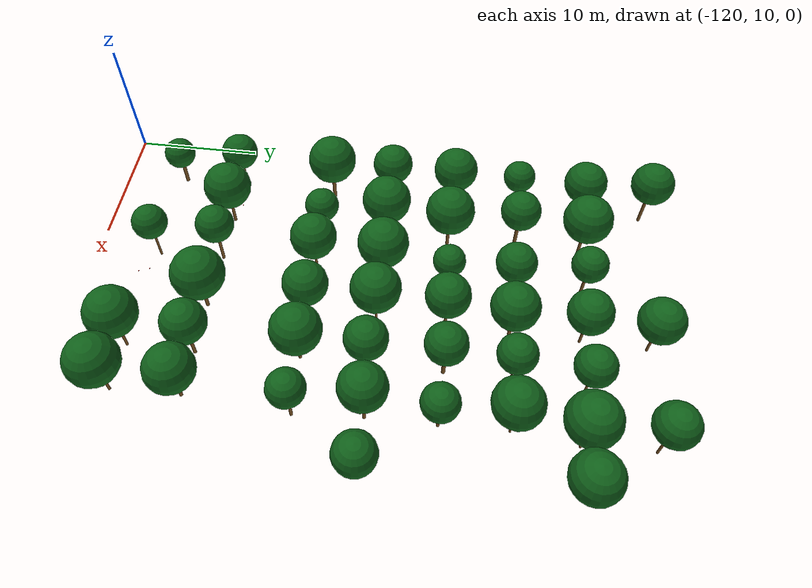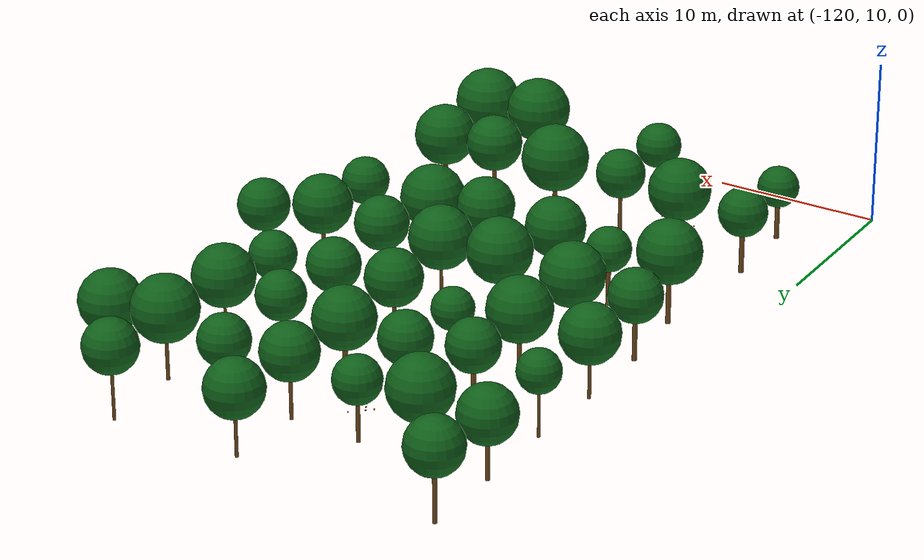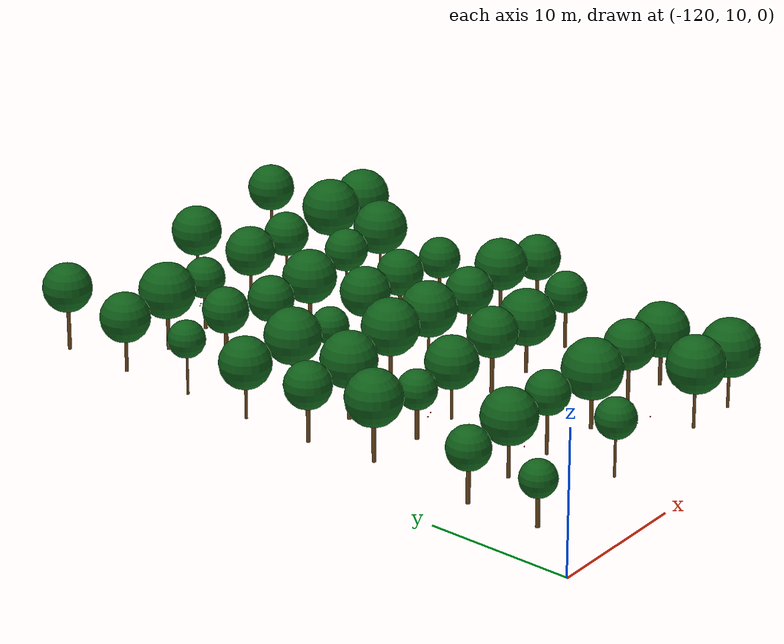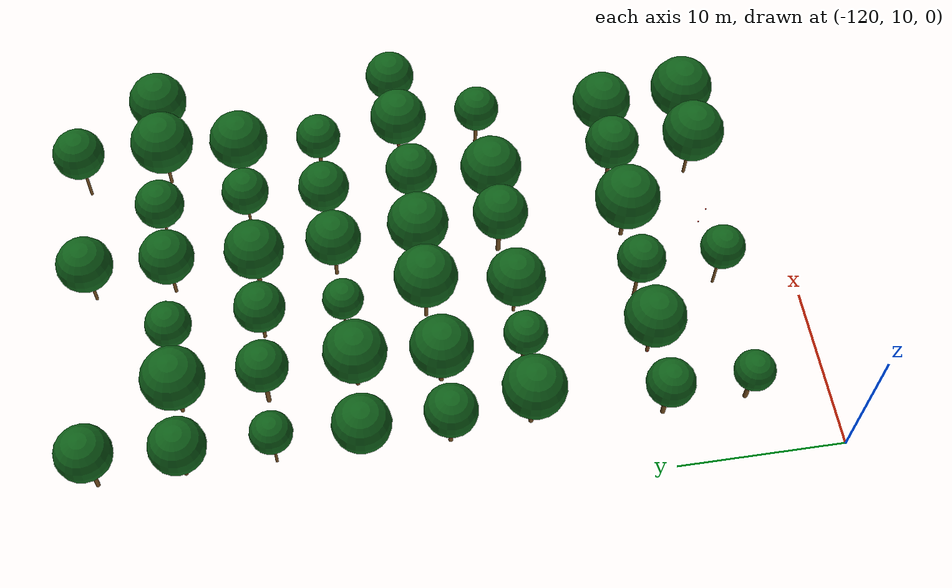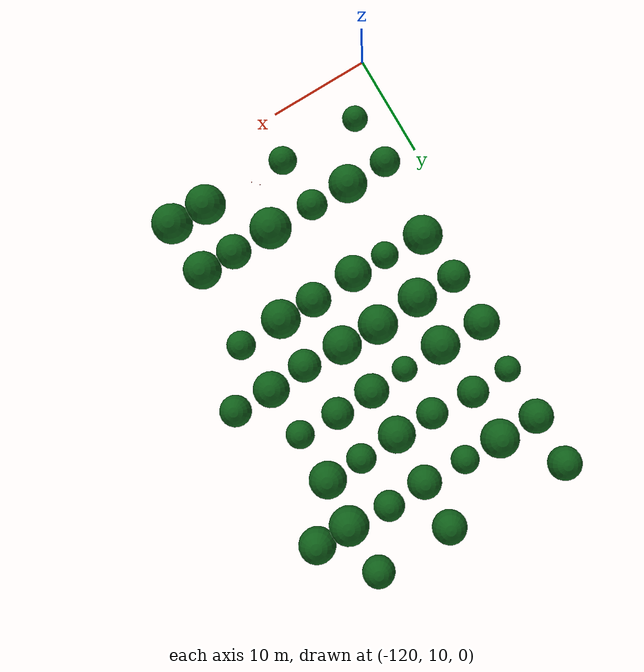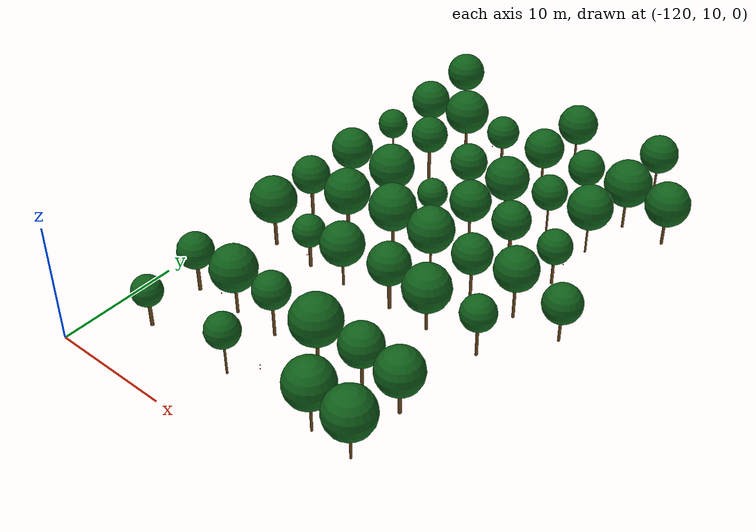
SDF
<sdf version="1.9">
 <world name="cheongsong_orchard">
  <model name="apple_tree_1367">
   <static>true</static>
   <pose>-116.18 15.01 0 0 0 0</pose>
   <link name="link">
    <collision name="trunk_col">
     <pose>0 0 1.04 0 0 0</pose>
     <geometry><cylinder><radius>0.144</radius><length>2.09</length></cylinder></geometry>
    </collision>
    <visual name="trunk_vis">
     <pose>0 0 1.04 0 0 0</pose>
     <geometry><cylinder><radius>0.144</radius><length>2.09</length></cylinder></geometry>
     <material><ambient>0.35 0.22 0.08 1</ambient><diffuse>0.45 0.30 0.12 1</diffuse></material>
    </visual>
    <collision name="canopy_col">
     <pose>0 0 3.31 0 0 0</pose>
     <geometry><sphere><radius>1.22</radius></sphere></geometry>
    </collision>
    <visual name="canopy_vis">
     <pose>0 0 3.31 0 0 0</pose>
     <geometry><sphere><radius>1.22</radius></sphere></geometry>
     <material><ambient>0.04 0.28 0.06 1</ambient><diffuse>0.06 0.38 0.10 1</diffuse></material>
    </visual>
   </link>
  </model>
  <model name="apple_tree_1369">
   <static>true</static>
   <pose>-108.26 15.04 0 0 0 0</pose>
   <link name="link">
    <collision name="trunk_col">
     <pose>0 0 1.38 0 0 0</pose>
     <geometry><cylinder><radius>0.088</radius><length>2.75</length></cylinder></geometry>
    </collision>
    <visual name="trunk_vis">
     <pose>0 0 1.38 0 0 0</pose>
     <geometry><cylinder><radius>0.088</radius><length>2.75</length></cylinder></geometry>
     <material><ambient>0.35 0.22 0.08 1</ambient><diffuse>0.45 0.30 0.12 1</diffuse></material>
    </visual>
    <collision name="canopy_col">
     <pose>0 0 4.09 0 0 0</pose>
     <geometry><sphere><radius>1.34</radius></sphere></geometry>
    </collision>
    <visual name="canopy_vis">
     <pose>0 0 4.09 0 0 0</pose>
     <geometry><sphere><radius>1.34</radius></sphere></geometry>
     <material><ambient>0.04 0.28 0.06 1</ambient><diffuse>0.06 0.38 0.10 1</diffuse></material>
    </visual>
   </link>
  </model>
  <model name="apple_tree_1371">
   <static>true</static>
   <pose>-99.95 14.92 0 0 0 0</pose>
   <link name="link">
    <collision name="trunk_col">
     <pose>0 0 1.28 0 0 0</pose>
     <geometry><cylinder><radius>0.100</radius><length>2.56</length></cylinder></geometry>
    </collision>
    <visual name="trunk_vis">
     <pose>0 0 1.28 0 0 0</pose>
     <geometry><cylinder><radius>0.100</radius><length>2.56</length></cylinder></geometry>
     <material><ambient>0.35 0.22 0.08 1</ambient><diffuse>0.45 0.30 0.12 1</diffuse></material>
    </visual>
    <collision name="canopy_col">
     <pose>0 0 4.46 0 0 0</pose>
     <geometry><sphere><radius>1.90</radius></sphere></geometry>
    </collision>
    <visual name="canopy_vis">
     <pose>0 0 4.46 0 0 0</pose>
     <geometry><sphere><radius>1.90</radius></sphere></geometry>
     <material><ambient>0.04 0.28 0.06 1</ambient><diffuse>0.06 0.38 0.10 1</diffuse></material>
    </visual>
   </link>
  </model>
  <model name="apple_tree_1372">
   <static>true</static>
   <pose>-96.33 14.81 0 0 0 0</pose>
   <link name="link">
    <collision name="trunk_col">
     <pose>0 0 1.15 0 0 0</pose>
     <geometry><cylinder><radius>0.099</radius><length>2.31</length></cylinder></geometry>
    </collision>
    <visual name="trunk_vis">
     <pose>0 0 1.15 0 0 0</pose>
     <geometry><cylinder><radius>0.099</radius><length>2.31</length></cylinder></geometry>
     <material><ambient>0.35 0.22 0.08 1</ambient><diffuse>0.45 0.30 0.12 1</diffuse></material>
    </visual>
    <collision name="canopy_col">
     <pose>0 0 4.24 0 0 0</pose>
     <geometry><sphere><radius>1.93</radius></sphere></geometry>
    </collision>
    <visual name="canopy_vis">
     <pose>0 0 4.24 0 0 0</pose>
     <geometry><sphere><radius>1.93</radius></sphere></geometry>
     <material><ambient>0.04 0.28 0.06 1</ambient><diffuse>0.06 0.38 0.10 1</diffuse></material>
    </visual>
   </link>
  </model>
  <model name="apple_tree_1419">
   <static>true</static>
   <pose>-116.46 20.05 0 0 0 0</pose>
   <link name="link">
    <collision name="trunk_col">
     <pose>0 0 1.18 0 0 0</pose>
     <geometry><cylinder><radius>0.147</radius><length>2.37</length></cylinder></geometry>
    </collision>
    <visual name="trunk_vis">
     <pose>0 0 1.18 0 0 0</pose>
     <geometry><cylinder><radius>0.147</radius><length>2.37</length></cylinder></geometry>
     <material><ambient>0.35 0.22 0.08 1</ambient><diffuse>0.45 0.30 0.12 1</diffuse></material>
    </visual>
    <collision name="canopy_col">
     <pose>0 0 3.81 0 0 0</pose>
     <geometry><sphere><radius>1.44</radius></sphere></geometry>
    </collision>
    <visual name="canopy_vis">
     <pose>0 0 3.81 0 0 0</pose>
     <geometry><sphere><radius>1.44</radius></sphere></geometry>
     <material><ambient>0.04 0.28 0.06 1</ambient><diffuse>0.06 0.38 0.10 1</diffuse></material>
    </visual>
   </link>
  </model>
  <model name="apple_tree_1420">
   <static>true</static>
   <pose>-112.37 20.08 0 0 0 0</pose>
   <link name="link">
    <collision name="trunk_col">
     <pose>0 0 1.21 0 0 0</pose>
     <geometry><cylinder><radius>0.117</radius><length>2.42</length></cylinder></geometry>
    </collision>
    <visual name="trunk_vis">
     <pose>0 0 1.21 0 0 0</pose>
     <geometry><cylinder><radius>0.117</radius><length>2.42</length></cylinder></geometry>
     <material><ambient>0.35 0.22 0.08 1</ambient><diffuse>0.45 0.30 0.12 1</diffuse></material>
    </visual>
    <collision name="canopy_col">
     <pose>0 0 4.25 0 0 0</pose>
     <geometry><sphere><radius>1.83</radius></sphere></geometry>
    </collision>
    <visual name="canopy_vis">
     <pose>0 0 4.25 0 0 0</pose>
     <geometry><sphere><radius>1.83</radius></sphere></geometry>
     <material><ambient>0.04 0.28 0.06 1</ambient><diffuse>0.06 0.38 0.10 1</diffuse></material>
    </visual>
   </link>
  </model>
  <model name="apple_tree_1421">
   <static>true</static>
   <pose>-108.48 20.05 0 0 0 0</pose>
   <link name="link">
    <collision name="trunk_col">
     <pose>0 0 1.43 0 0 0</pose>
     <geometry><cylinder><radius>0.115</radius><length>2.86</length></cylinder></geometry>
    </collision>
    <visual name="trunk_vis">
     <pose>0 0 1.43 0 0 0</pose>
     <geometry><cylinder><radius>0.115</radius><length>2.86</length></cylinder></geometry>
     <material><ambient>0.35 0.22 0.08 1</ambient><diffuse>0.45 0.30 0.12 1</diffuse></material>
    </visual>
    <collision name="canopy_col">
     <pose>0 0 4.31 0 0 0</pose>
     <geometry><sphere><radius>1.45</radius></sphere></geometry>
    </collision>
    <visual name="canopy_vis">
     <pose>0 0 4.31 0 0 0</pose>
     <geometry><sphere><radius>1.45</radius></sphere></geometry>
     <material><ambient>0.04 0.28 0.06 1</ambient><diffuse>0.06 0.38 0.10 1</diffuse></material>
    </visual>
   </link>
  </model>
  <model name="apple_tree_1422">
   <static>true</static>
   <pose>-104.01 19.91 0 0 0 0</pose>
   <link name="link">
    <collision name="trunk_col">
     <pose>0 0 1.10 0 0 0</pose>
     <geometry><cylinder><radius>0.131</radius><length>2.21</length></cylinder></geometry>
    </collision>
    <visual name="trunk_vis">
     <pose>0 0 1.10 0 0 0</pose>
     <geometry><cylinder><radius>0.131</radius><length>2.21</length></cylinder></geometry>
     <material><ambient>0.35 0.22 0.08 1</ambient><diffuse>0.45 0.30 0.12 1</diffuse></material>
    </visual>
    <collision name="canopy_col">
     <pose>0 0 4.20 0 0 0</pose>
     <geometry><sphere><radius>1.99</radius></sphere></geometry>
    </collision>
    <visual name="canopy_vis">
     <pose>0 0 4.20 0 0 0</pose>
     <geometry><sphere><radius>1.99</radius></sphere></geometry>
     <material><ambient>0.04 0.28 0.06 1</ambient><diffuse>0.06 0.38 0.10 1</diffuse></material>
    </visual>
   </link>
  </model>
  <model name="apple_tree_1423">
   <static>true</static>
   <pose>-99.92 20.02 0 0 0 0</pose>
   <link name="link">
    <collision name="trunk_col">
     <pose>0 0 1.28 0 0 0</pose>
     <geometry><cylinder><radius>0.125</radius><length>2.57</length></cylinder></geometry>
    </collision>
    <visual name="trunk_vis">
     <pose>0 0 1.28 0 0 0</pose>
     <geometry><cylinder><radius>0.125</radius><length>2.57</length></cylinder></geometry>
     <material><ambient>0.35 0.22 0.08 1</ambient><diffuse>0.45 0.30 0.12 1</diffuse></material>
    </visual>
    <collision name="canopy_col">
     <pose>0 0 4.23 0 0 0</pose>
     <geometry><sphere><radius>1.66</radius></sphere></geometry>
    </collision>
    <visual name="canopy_vis">
     <pose>0 0 4.23 0 0 0</pose>
     <geometry><sphere><radius>1.66</radius></sphere></geometry>
     <material><ambient>0.04 0.28 0.06 1</ambient><diffuse>0.06 0.38 0.10 1</diffuse></material>
    </visual>
   </link>
  </model>
  <model name="apple_tree_1424">
   <static>true</static>
   <pose>-96.47 19.96 0 0 0 0</pose>
   <link name="link">
    <collision name="trunk_col">
     <pose>0 0 1.07 0 0 0</pose>
     <geometry><cylinder><radius>0.129</radius><length>2.13</length></cylinder></geometry>
    </collision>
    <visual name="trunk_vis">
     <pose>0 0 1.07 0 0 0</pose>
     <geometry><cylinder><radius>0.129</radius><length>2.13</length></cylinder></geometry>
     <material><ambient>0.35 0.22 0.08 1</ambient><diffuse>0.45 0.30 0.12 1</diffuse></material>
    </visual>
    <collision name="canopy_col">
     <pose>0 0 3.95 0 0 0</pose>
     <geometry><sphere><radius>1.82</radius></sphere></geometry>
    </collision>
    <visual name="canopy_vis">
     <pose>0 0 3.95 0 0 0</pose>
     <geometry><sphere><radius>1.82</radius></sphere></geometry>
     <material><ambient>0.04 0.28 0.06 1</ambient><diffuse>0.06 0.38 0.10 1</diffuse></material>
    </visual>
   </link>
  </model>
  <model name="apple_tree_1469">
   <static>true</static>
   <pose>-115.90 27.81 0 0 0 0</pose>
   <link name="link">
    <collision name="trunk_col">
     <pose>0 0 1.29 0 0 0</pose>
     <geometry><cylinder><radius>0.144</radius><length>2.58</length></cylinder></geometry>
    </collision>
    <visual name="trunk_vis">
     <pose>0 0 1.29 0 0 0</pose>
     <geometry><cylinder><radius>0.144</radius><length>2.58</length></cylinder></geometry>
     <material><ambient>0.35 0.22 0.08 1</ambient><diffuse>0.45 0.30 0.12 1</diffuse></material>
    </visual>
    <collision name="canopy_col">
     <pose>0 0 4.45 0 0 0</pose>
     <geometry><sphere><radius>1.87</radius></sphere></geometry>
    </collision>
    <visual name="canopy_vis">
     <pose>0 0 4.45 0 0 0</pose>
     <geometry><sphere><radius>1.87</radius></sphere></geometry>
     <material><ambient>0.04 0.28 0.06 1</ambient><diffuse>0.06 0.38 0.10 1</diffuse></material>
    </visual>
   </link>
  </model>
  <model name="apple_tree_1470">
   <static>true</static>
   <pose>-111.93 27.57 0 0 0 0</pose>
   <link name="link">
    <collision name="trunk_col">
     <pose>0 0 1.08 0 0 0</pose>
     <geometry><cylinder><radius>0.138</radius><length>2.17</length></cylinder></geometry>
    </collision>
    <visual name="trunk_vis">
     <pose>0 0 1.08 0 0 0</pose>
     <geometry><cylinder><radius>0.138</radius><length>2.17</length></cylinder></geometry>
     <material><ambient>0.35 0.22 0.08 1</ambient><diffuse>0.45 0.30 0.12 1</diffuse></material>
    </visual>
    <collision name="canopy_col">
     <pose>0 0 3.48 0 0 0</pose>
     <geometry><sphere><radius>1.31</radius></sphere></geometry>
    </collision>
    <visual name="canopy_vis">
     <pose>0 0 3.48 0 0 0</pose>
     <geometry><sphere><radius>1.31</radius></sphere></geometry>
     <material><ambient>0.04 0.28 0.06 1</ambient><diffuse>0.06 0.38 0.10 1</diffuse></material>
    </visual>
   </link>
  </model>
  <model name="apple_tree_1471">
   <static>true</static>
   <pose>-108.46 27.54 0 0 0 0</pose>
   <link name="link">
    <collision name="trunk_col">
     <pose>0 0 1.12 0 0 0</pose>
     <geometry><cylinder><radius>0.098</radius><length>2.25</length></cylinder></geometry>
    </collision>
    <visual name="trunk_vis">
     <pose>0 0 1.12 0 0 0</pose>
     <geometry><cylinder><radius>0.098</radius><length>2.25</length></cylinder></geometry>
     <material><ambient>0.35 0.22 0.08 1</ambient><diffuse>0.45 0.30 0.12 1</diffuse></material>
    </visual>
    <collision name="canopy_col">
     <pose>0 0 4.00 0 0 0</pose>
     <geometry><sphere><radius>1.75</radius></sphere></geometry>
    </collision>
    <visual name="canopy_vis">
     <pose>0 0 4.00 0 0 0</pose>
     <geometry><sphere><radius>1.75</radius></sphere></geometry>
     <material><ambient>0.04 0.28 0.06 1</ambient><diffuse>0.06 0.38 0.10 1</diffuse></material>
    </visual>
   </link>
  </model>
  <model name="apple_tree_1472">
   <static>true</static>
   <pose>-104.01 27.74 0 0 0 0</pose>
   <link name="link">
    <collision name="trunk_col">
     <pose>0 0 1.32 0 0 0</pose>
     <geometry><cylinder><radius>0.145</radius><length>2.63</length></cylinder></geometry>
    </collision>
    <visual name="trunk_vis">
     <pose>0 0 1.32 0 0 0</pose>
     <geometry><cylinder><radius>0.145</radius><length>2.63</length></cylinder></geometry>
     <material><ambient>0.35 0.22 0.08 1</ambient><diffuse>0.45 0.30 0.12 1</diffuse></material>
    </visual>
    <collision name="canopy_col">
     <pose>0 0 4.30 0 0 0</pose>
     <geometry><sphere><radius>1.67</radius></sphere></geometry>
    </collision>
    <visual name="canopy_vis">
     <pose>0 0 4.30 0 0 0</pose>
     <geometry><sphere><radius>1.67</radius></sphere></geometry>
     <material><ambient>0.04 0.28 0.06 1</ambient><diffuse>0.06 0.38 0.10 1</diffuse></material>
    </visual>
   </link>
  </model>
  <model name="apple_tree_1473">
   <static>true</static>
   <pose>-100.42 27.70 0 0 0 0</pose>
   <link name="link">
    <collision name="trunk_col">
     <pose>0 0 1.05 0 0 0</pose>
     <geometry><cylinder><radius>0.121</radius><length>2.09</length></cylinder></geometry>
    </collision>
    <visual name="trunk_vis">
     <pose>0 0 1.05 0 0 0</pose>
     <geometry><cylinder><radius>0.121</radius><length>2.09</length></cylinder></geometry>
     <material><ambient>0.35 0.22 0.08 1</ambient><diffuse>0.45 0.30 0.12 1</diffuse></material>
    </visual>
    <collision name="canopy_col">
     <pose>0 0 3.97 0 0 0</pose>
     <geometry><sphere><radius>1.88</radius></sphere></geometry>
    </collision>
    <visual name="canopy_vis">
     <pose>0 0 3.97 0 0 0</pose>
     <geometry><sphere><radius>1.88</radius></sphere></geometry>
     <material><ambient>0.04 0.28 0.06 1</ambient><diffuse>0.06 0.38 0.10 1</diffuse></material>
    </visual>
   </link>
  </model>
  <model name="apple_tree_1474">
   <static>true</static>
   <pose>-95.95 27.89 0 0 0 0</pose>
   <link name="link">
    <collision name="trunk_col">
     <pose>0 0 1.30 0 0 0</pose>
     <geometry><cylinder><radius>0.117</radius><length>2.60</length></cylinder></geometry>
    </collision>
    <visual name="trunk_vis">
     <pose>0 0 1.30 0 0 0</pose>
     <geometry><cylinder><radius>0.117</radius><length>2.60</length></cylinder></geometry>
     <material><ambient>0.35 0.22 0.08 1</ambient><diffuse>0.45 0.30 0.12 1</diffuse></material>
    </visual>
    <collision name="canopy_col">
     <pose>0 0 3.99 0 0 0</pose>
     <geometry><sphere><radius>1.39</radius></sphere></geometry>
    </collision>
    <visual name="canopy_vis">
     <pose>0 0 3.99 0 0 0</pose>
     <geometry><sphere><radius>1.39</radius></sphere></geometry>
     <material><ambient>0.04 0.28 0.06 1</ambient><diffuse>0.06 0.38 0.10 1</diffuse></material>
    </visual>
   </link>
  </model>
  <model name="apple_tree_1521">
   <static>true</static>
   <pose>-116.43 32.63 0 0 0 0</pose>
   <link name="link">
    <collision name="trunk_col">
     <pose>0 0 1.21 0 0 0</pose>
     <geometry><cylinder><radius>0.138</radius><length>2.41</length></cylinder></geometry>
    </collision>
    <visual name="trunk_vis">
     <pose>0 0 1.21 0 0 0</pose>
     <geometry><cylinder><radius>0.138</radius><length>2.41</length></cylinder></geometry>
     <material><ambient>0.35 0.22 0.08 1</ambient><diffuse>0.45 0.30 0.12 1</diffuse></material>
    </visual>
    <collision name="canopy_col">
     <pose>0 0 3.97 0 0 0</pose>
     <geometry><sphere><radius>1.56</radius></sphere></geometry>
    </collision>
    <visual name="canopy_vis">
     <pose>0 0 3.97 0 0 0</pose>
     <geometry><sphere><radius>1.56</radius></sphere></geometry>
     <material><ambient>0.04 0.28 0.06 1</ambient><diffuse>0.06 0.38 0.10 1</diffuse></material>
    </visual>
   </link>
  </model>
  <model name="apple_tree_1522">
   <static>true</static>
   <pose>-112.46 32.58 0 0 0 0</pose>
   <link name="link">
    <collision name="trunk_col">
     <pose>0 0 1.17 0 0 0</pose>
     <geometry><cylinder><radius>0.149</radius><length>2.34</length></cylinder></geometry>
    </collision>
    <visual name="trunk_vis">
     <pose>0 0 1.17 0 0 0</pose>
     <geometry><cylinder><radius>0.149</radius><length>2.34</length></cylinder></geometry>
     <material><ambient>0.35 0.22 0.08 1</ambient><diffuse>0.45 0.30 0.12 1</diffuse></material>
    </visual>
    <collision name="canopy_col">
     <pose>0 0 4.20 0 0 0</pose>
     <geometry><sphere><radius>1.86</radius></sphere></geometry>
    </collision>
    <visual name="canopy_vis">
     <pose>0 0 4.20 0 0 0</pose>
     <geometry><sphere><radius>1.86</radius></sphere></geometry>
     <material><ambient>0.04 0.28 0.06 1</ambient><diffuse>0.06 0.38 0.10 1</diffuse></material>
    </visual>
   </link>
  </model>
  <model name="apple_tree_1523">
   <static>true</static>
   <pose>-107.98 32.84 0 0 0 0</pose>
   <link name="link">
    <collision name="trunk_col">
     <pose>0 0 1.38 0 0 0</pose>
     <geometry><cylinder><radius>0.128</radius><length>2.75</length></cylinder></geometry>
    </collision>
    <visual name="trunk_vis">
     <pose>0 0 1.38 0 0 0</pose>
     <geometry><cylinder><radius>0.128</radius><length>2.75</length></cylinder></geometry>
     <material><ambient>0.35 0.22 0.08 1</ambient><diffuse>0.45 0.30 0.12 1</diffuse></material>
    </visual>
    <collision name="canopy_col">
     <pose>0 0 4.64 0 0 0</pose>
     <geometry><sphere><radius>1.89</radius></sphere></geometry>
    </collision>
    <visual name="canopy_vis">
     <pose>0 0 4.64 0 0 0</pose>
     <geometry><sphere><radius>1.89</radius></sphere></geometry>
     <material><ambient>0.04 0.28 0.06 1</ambient><diffuse>0.06 0.38 0.10 1</diffuse></material>
    </visual>
   </link>
  </model>
  <model name="apple_tree_1524">
   <static>true</static>
   <pose>-104.12 32.77 0 0 0 0</pose>
   <link name="link">
    <collision name="trunk_col">
     <pose>0 0 1.29 0 0 0</pose>
     <geometry><cylinder><radius>0.093</radius><length>2.57</length></cylinder></geometry>
    </collision>
    <visual name="trunk_vis">
     <pose>0 0 1.29 0 0 0</pose>
     <geometry><cylinder><radius>0.093</radius><length>2.57</length></cylinder></geometry>
     <material><ambient>0.35 0.22 0.08 1</ambient><diffuse>0.45 0.30 0.12 1</diffuse></material>
    </visual>
    <collision name="canopy_col">
     <pose>0 0 4.43 0 0 0</pose>
     <geometry><sphere><radius>1.85</radius></sphere></geometry>
    </collision>
    <visual name="canopy_vis">
     <pose>0 0 4.43 0 0 0</pose>
     <geometry><sphere><radius>1.85</radius></sphere></geometry>
     <material><ambient>0.04 0.28 0.06 1</ambient><diffuse>0.06 0.38 0.10 1</diffuse></material>
    </visual>
   </link>
  </model>
  <model name="apple_tree_1525">
   <static>true</static>
   <pose>-100.10 32.61 0 0 0 0</pose>
   <link name="link">
    <collision name="trunk_col">
     <pose>0 0 1.34 0 0 0</pose>
     <geometry><cylinder><radius>0.118</radius><length>2.67</length></cylinder></geometry>
    </collision>
    <visual name="trunk_vis">
     <pose>0 0 1.34 0 0 0</pose>
     <geometry><cylinder><radius>0.118</radius><length>2.67</length></cylinder></geometry>
     <material><ambient>0.35 0.22 0.08 1</ambient><diffuse>0.45 0.30 0.12 1</diffuse></material>
    </visual>
    <collision name="canopy_col">
     <pose>0 0 4.25 0 0 0</pose>
     <geometry><sphere><radius>1.58</radius></sphere></geometry>
    </collision>
    <visual name="canopy_vis">
     <pose>0 0 4.25 0 0 0</pose>
     <geometry><sphere><radius>1.58</radius></sphere></geometry>
     <material><ambient>0.04 0.28 0.06 1</ambient><diffuse>0.06 0.38 0.10 1</diffuse></material>
    </visual>
   </link>
  </model>
  <model name="apple_tree_1526">
   <static>true</static>
   <pose>-96.32 32.91 0 0 0 0</pose>
   <link name="link">
    <collision name="trunk_col">
     <pose>0 0 1.44 0 0 0</pose>
     <geometry><cylinder><radius>0.115</radius><length>2.89</length></cylinder></geometry>
    </collision>
    <visual name="trunk_vis">
     <pose>0 0 1.44 0 0 0</pose>
     <geometry><cylinder><radius>0.115</radius><length>2.89</length></cylinder></geometry>
     <material><ambient>0.35 0.22 0.08 1</ambient><diffuse>0.45 0.30 0.12 1</diffuse></material>
    </visual>
    <collision name="canopy_col">
     <pose>0 0 4.62 0 0 0</pose>
     <geometry><sphere><radius>1.73</radius></sphere></geometry>
    </collision>
    <visual name="canopy_vis">
     <pose>0 0 4.62 0 0 0</pose>
     <geometry><sphere><radius>1.73</radius></sphere></geometry>
     <material><ambient>0.04 0.28 0.06 1</ambient><diffuse>0.06 0.38 0.10 1</diffuse></material>
    </visual>
   </link>
  </model>
  <model name="apple_tree_1527">
   <static>true</static>
   <pose>-92.25 32.93 0 0 0 0</pose>
   <link name="link">
    <collision name="trunk_col">
     <pose>0 0 1.03 0 0 0</pose>
     <geometry><cylinder><radius>0.109</radius><length>2.05</length></cylinder></geometry>
    </collision>
    <visual name="trunk_vis">
     <pose>0 0 1.03 0 0 0</pose>
     <geometry><cylinder><radius>0.109</radius><length>2.05</length></cylinder></geometry>
     <material><ambient>0.35 0.22 0.08 1</ambient><diffuse>0.45 0.30 0.12 1</diffuse></material>
    </visual>
    <collision name="canopy_col">
     <pose>0 0 3.59 0 0 0</pose>
     <geometry><sphere><radius>1.54</radius></sphere></geometry>
    </collision>
    <visual name="canopy_vis">
     <pose>0 0 3.59 0 0 0</pose>
     <geometry><sphere><radius>1.54</radius></sphere></geometry>
     <material><ambient>0.04 0.28 0.06 1</ambient><diffuse>0.06 0.38 0.10 1</diffuse></material>
    </visual>
   </link>
  </model>
  <model name="apple_tree_1575">
   <static>true</static>
   <pose>-116.47 37.68 0 0 0 0</pose>
   <link name="link">
    <collision name="trunk_col">
     <pose>0 0 1.11 0 0 0</pose>
     <geometry><cylinder><radius>0.098</radius><length>2.21</length></cylinder></geometry>
    </collision>
    <visual name="trunk_vis">
     <pose>0 0 1.11 0 0 0</pose>
     <geometry><cylinder><radius>0.098</radius><length>2.21</length></cylinder></geometry>
     <material><ambient>0.35 0.22 0.08 1</ambient><diffuse>0.45 0.30 0.12 1</diffuse></material>
    </visual>
    <collision name="canopy_col">
     <pose>0 0 3.93 0 0 0</pose>
     <geometry><sphere><radius>1.72</radius></sphere></geometry>
    </collision>
    <visual name="canopy_vis">
     <pose>0 0 3.93 0 0 0</pose>
     <geometry><sphere><radius>1.72</radius></sphere></geometry>
     <material><ambient>0.04 0.28 0.06 1</ambient><diffuse>0.06 0.38 0.10 1</diffuse></material>
    </visual>
   </link>
  </model>
  <model name="apple_tree_1576">
   <static>true</static>
   <pose>-112.03 37.52 0 0 0 0</pose>
   <link name="link">
    <collision name="trunk_col">
     <pose>0 0 1.12 0 0 0</pose>
     <geometry><cylinder><radius>0.126</radius><length>2.25</length></cylinder></geometry>
    </collision>
    <visual name="trunk_vis">
     <pose>0 0 1.12 0 0 0</pose>
     <geometry><cylinder><radius>0.126</radius><length>2.25</length></cylinder></geometry>
     <material><ambient>0.35 0.22 0.08 1</ambient><diffuse>0.45 0.30 0.12 1</diffuse></material>
    </visual>
    <collision name="canopy_col">
     <pose>0 0 4.12 0 0 0</pose>
     <geometry><sphere><radius>1.87</radius></sphere></geometry>
    </collision>
    <visual name="canopy_vis">
     <pose>0 0 4.12 0 0 0</pose>
     <geometry><sphere><radius>1.87</radius></sphere></geometry>
     <material><ambient>0.04 0.28 0.06 1</ambient><diffuse>0.06 0.38 0.10 1</diffuse></material>
    </visual>
   </link>
  </model>
  <model name="apple_tree_1577">
   <static>true</static>
   <pose>-107.98 37.78 0 0 0 0</pose>
   <link name="link">
    <collision name="trunk_col">
     <pose>0 0 0.98 0 0 0</pose>
     <geometry><cylinder><radius>0.081</radius><length>1.97</length></cylinder></geometry>
    </collision>
    <visual name="trunk_vis">
     <pose>0 0 0.98 0 0 0</pose>
     <geometry><cylinder><radius>0.081</radius><length>1.97</length></cylinder></geometry>
     <material><ambient>0.35 0.22 0.08 1</ambient><diffuse>0.45 0.30 0.12 1</diffuse></material>
    </visual>
    <collision name="canopy_col">
     <pose>0 0 3.20 0 0 0</pose>
     <geometry><sphere><radius>1.23</radius></sphere></geometry>
    </collision>
    <visual name="canopy_vis">
     <pose>0 0 3.20 0 0 0</pose>
     <geometry><sphere><radius>1.23</radius></sphere></geometry>
     <material><ambient>0.04 0.28 0.06 1</ambient><diffuse>0.06 0.38 0.10 1</diffuse></material>
    </visual>
   </link>
  </model>
  <model name="apple_tree_1578">
   <static>true</static>
   <pose>-104.27 37.89 0 0 0 0</pose>
   <link name="link">
    <collision name="trunk_col">
     <pose>0 0 1.25 0 0 0</pose>
     <geometry><cylinder><radius>0.109</radius><length>2.49</length></cylinder></geometry>
    </collision>
    <visual name="trunk_vis">
     <pose>0 0 1.25 0 0 0</pose>
     <geometry><cylinder><radius>0.109</radius><length>2.49</length></cylinder></geometry>
     <material><ambient>0.35 0.22 0.08 1</ambient><diffuse>0.45 0.30 0.12 1</diffuse></material>
    </visual>
    <collision name="canopy_col">
     <pose>0 0 4.16 0 0 0</pose>
     <geometry><sphere><radius>1.66</radius></sphere></geometry>
    </collision>
    <visual name="canopy_vis">
     <pose>0 0 4.16 0 0 0</pose>
     <geometry><sphere><radius>1.66</radius></sphere></geometry>
     <material><ambient>0.04 0.28 0.06 1</ambient><diffuse>0.06 0.38 0.10 1</diffuse></material>
    </visual>
   </link>
  </model>
  <model name="apple_tree_1579">
   <static>true</static>
   <pose>-100.44 38.05 0 0 0 0</pose>
   <link name="link">
    <collision name="trunk_col">
     <pose>0 0 1.24 0 0 0</pose>
     <geometry><cylinder><radius>0.147</radius><length>2.49</length></cylinder></geometry>
    </collision>
    <visual name="trunk_vis">
     <pose>0 0 1.24 0 0 0</pose>
     <geometry><cylinder><radius>0.147</radius><length>2.49</length></cylinder></geometry>
     <material><ambient>0.35 0.22 0.08 1</ambient><diffuse>0.45 0.30 0.12 1</diffuse></material>
    </visual>
    <collision name="canopy_col">
     <pose>0 0 4.04 0 0 0</pose>
     <geometry><sphere><radius>1.55</radius></sphere></geometry>
    </collision>
    <visual name="canopy_vis">
     <pose>0 0 4.04 0 0 0</pose>
     <geometry><sphere><radius>1.55</radius></sphere></geometry>
     <material><ambient>0.04 0.28 0.06 1</ambient><diffuse>0.06 0.38 0.10 1</diffuse></material>
    </visual>
   </link>
  </model>
  <model name="apple_tree_1580">
   <static>true</static>
   <pose>-96.33 37.98 0 0 0 0</pose>
   <link name="link">
    <collision name="trunk_col">
     <pose>0 0 1.10 0 0 0</pose>
     <geometry><cylinder><radius>0.115</radius><length>2.20</length></cylinder></geometry>
    </collision>
    <visual name="trunk_vis">
     <pose>0 0 1.10 0 0 0</pose>
     <geometry><cylinder><radius>0.115</radius><length>2.20</length></cylinder></geometry>
     <material><ambient>0.35 0.22 0.08 1</ambient><diffuse>0.45 0.30 0.12 1</diffuse></material>
    </visual>
    <collision name="canopy_col">
     <pose>0 0 3.58 0 0 0</pose>
     <geometry><sphere><radius>1.38</radius></sphere></geometry>
    </collision>
    <visual name="canopy_vis">
     <pose>0 0 3.58 0 0 0</pose>
     <geometry><sphere><radius>1.38</radius></sphere></geometry>
     <material><ambient>0.04 0.28 0.06 1</ambient><diffuse>0.06 0.38 0.10 1</diffuse></material>
    </visual>
   </link>
  </model>
  <model name="apple_tree_1632">
   <static>true</static>
   <pose>-116.29 42.72 0 0 0 0</pose>
   <link name="link">
    <collision name="trunk_col">
     <pose>0 0 1.35 0 0 0</pose>
     <geometry><cylinder><radius>0.084</radius><length>2.70</length></cylinder></geometry>
    </collision>
    <visual name="trunk_vis">
     <pose>0 0 1.35 0 0 0</pose>
     <geometry><cylinder><radius>0.084</radius><length>2.70</length></cylinder></geometry>
     <material><ambient>0.35 0.22 0.08 1</ambient><diffuse>0.45 0.30 0.12 1</diffuse></material>
    </visual>
    <collision name="canopy_col">
     <pose>0 0 3.94 0 0 0</pose>
     <geometry><sphere><radius>1.24</radius></sphere></geometry>
    </collision>
    <visual name="canopy_vis">
     <pose>0 0 3.94 0 0 0</pose>
     <geometry><sphere><radius>1.24</radius></sphere></geometry>
     <material><ambient>0.04 0.28 0.06 1</ambient><diffuse>0.06 0.38 0.10 1</diffuse></material>
    </visual>
   </link>
  </model>
  <model name="apple_tree_1633">
   <static>true</static>
   <pose>-112.36 42.83 0 0 0 0</pose>
   <link name="link">
    <collision name="trunk_col">
     <pose>0 0 1.46 0 0 0</pose>
     <geometry><cylinder><radius>0.139</radius><length>2.91</length></cylinder></geometry>
    </collision>
    <visual name="trunk_vis">
     <pose>0 0 1.46 0 0 0</pose>
     <geometry><cylinder><radius>0.139</radius><length>2.91</length></cylinder></geometry>
     <material><ambient>0.35 0.22 0.08 1</ambient><diffuse>0.45 0.30 0.12 1</diffuse></material>
    </visual>
    <collision name="canopy_col">
     <pose>0 0 4.43 0 0 0</pose>
     <geometry><sphere><radius>1.52</radius></sphere></geometry>
    </collision>
    <visual name="canopy_vis">
     <pose>0 0 4.43 0 0 0</pose>
     <geometry><sphere><radius>1.52</radius></sphere></geometry>
     <material><ambient>0.04 0.28 0.06 1</ambient><diffuse>0.06 0.38 0.10 1</diffuse></material>
    </visual>
   </link>
  </model>
  <model name="apple_tree_1634">
   <static>true</static>
   <pose>-108.06 42.68 0 0 0 0</pose>
   <link name="link">
    <collision name="trunk_col">
     <pose>0 0 1.05 0 0 0</pose>
     <geometry><cylinder><radius>0.106</radius><length>2.11</length></cylinder></geometry>
    </collision>
    <visual name="trunk_vis">
     <pose>0 0 1.05 0 0 0</pose>
     <geometry><cylinder><radius>0.106</radius><length>2.11</length></cylinder></geometry>
     <material><ambient>0.35 0.22 0.08 1</ambient><diffuse>0.45 0.30 0.12 1</diffuse></material>
    </visual>
    <collision name="canopy_col">
     <pose>0 0 3.64 0 0 0</pose>
     <geometry><sphere><radius>1.53</radius></sphere></geometry>
    </collision>
    <visual name="canopy_vis">
     <pose>0 0 3.64 0 0 0</pose>
     <geometry><sphere><radius>1.53</radius></sphere></geometry>
     <material><ambient>0.04 0.28 0.06 1</ambient><diffuse>0.06 0.38 0.10 1</diffuse></material>
    </visual>
   </link>
  </model>
  <model name="apple_tree_1635">
   <static>true</static>
   <pose>-104.16 42.66 0 0 0 0</pose>
   <link name="link">
    <collision name="trunk_col">
     <pose>0 0 0.98 0 0 0</pose>
     <geometry><cylinder><radius>0.139</radius><length>1.96</length></cylinder></geometry>
    </collision>
    <visual name="trunk_vis">
     <pose>0 0 0.98 0 0 0</pose>
     <geometry><cylinder><radius>0.139</radius><length>1.96</length></cylinder></geometry>
     <material><ambient>0.35 0.22 0.08 1</ambient><diffuse>0.45 0.30 0.12 1</diffuse></material>
    </visual>
    <collision name="canopy_col">
     <pose>0 0 3.77 0 0 0</pose>
     <geometry><sphere><radius>1.80</radius></sphere></geometry>
    </collision>
    <visual name="canopy_vis">
     <pose>0 0 3.77 0 0 0</pose>
     <geometry><sphere><radius>1.80</radius></sphere></geometry>
     <material><ambient>0.04 0.28 0.06 1</ambient><diffuse>0.06 0.38 0.10 1</diffuse></material>
    </visual>
   </link>
  </model>
  <model name="apple_tree_1636">
   <static>true</static>
   <pose>-100.17 42.81 0 0 0 0</pose>
   <link name="link">
    <collision name="trunk_col">
     <pose>0 0 1.36 0 0 0</pose>
     <geometry><cylinder><radius>0.083</radius><length>2.72</length></cylinder></geometry>
    </collision>
    <visual name="trunk_vis">
     <pose>0 0 1.36 0 0 0</pose>
     <geometry><cylinder><radius>0.083</radius><length>2.72</length></cylinder></geometry>
     <material><ambient>0.35 0.22 0.08 1</ambient><diffuse>0.45 0.30 0.12 1</diffuse></material>
    </visual>
    <collision name="canopy_col">
     <pose>0 0 4.15 0 0 0</pose>
     <geometry><sphere><radius>1.43</radius></sphere></geometry>
    </collision>
    <visual name="canopy_vis">
     <pose>0 0 4.15 0 0 0</pose>
     <geometry><sphere><radius>1.43</radius></sphere></geometry>
     <material><ambient>0.04 0.28 0.06 1</ambient><diffuse>0.06 0.38 0.10 1</diffuse></material>
    </visual>
   </link>
  </model>
  <model name="apple_tree_1637">
   <static>true</static>
   <pose>-96.47 42.89 0 0 0 0</pose>
   <link name="link">
    <collision name="trunk_col">
     <pose>0 0 1.31 0 0 0</pose>
     <geometry><cylinder><radius>0.082</radius><length>2.62</length></cylinder></geometry>
    </collision>
    <visual name="trunk_vis">
     <pose>0 0 1.31 0 0 0</pose>
     <geometry><cylinder><radius>0.082</radius><length>2.62</length></cylinder></geometry>
     <material><ambient>0.35 0.22 0.08 1</ambient><diffuse>0.45 0.30 0.12 1</diffuse></material>
    </visual>
    <collision name="canopy_col">
     <pose>0 0 4.42 0 0 0</pose>
     <geometry><sphere><radius>1.80</radius></sphere></geometry>
    </collision>
    <visual name="canopy_vis">
     <pose>0 0 4.42 0 0 0</pose>
     <geometry><sphere><radius>1.80</radius></sphere></geometry>
     <material><ambient>0.04 0.28 0.06 1</ambient><diffuse>0.06 0.38 0.10 1</diffuse></material>
    </visual>
   </link>
  </model>
  <model name="apple_tree_1688">
   <static>true</static>
   <pose>-116.31 47.93 0 0 0 0</pose>
   <link name="link">
    <collision name="trunk_col">
     <pose>0 0 1.10 0 0 0</pose>
     <geometry><cylinder><radius>0.114</radius><length>2.21</length></cylinder></geometry>
    </collision>
    <visual name="trunk_vis">
     <pose>0 0 1.10 0 0 0</pose>
     <geometry><cylinder><radius>0.114</radius><length>2.21</length></cylinder></geometry>
     <material><ambient>0.35 0.22 0.08 1</ambient><diffuse>0.45 0.30 0.12 1</diffuse></material>
    </visual>
    <collision name="canopy_col">
     <pose>0 0 3.87 0 0 0</pose>
     <geometry><sphere><radius>1.66</radius></sphere></geometry>
    </collision>
    <visual name="canopy_vis">
     <pose>0 0 3.87 0 0 0</pose>
     <geometry><sphere><radius>1.66</radius></sphere></geometry>
     <material><ambient>0.04 0.28 0.06 1</ambient><diffuse>0.06 0.38 0.10 1</diffuse></material>
    </visual>
   </link>
  </model>
  <model name="apple_tree_1689">
   <static>true</static>
   <pose>-112.28 47.90 0 0 0 0</pose>
   <link name="link">
    <collision name="trunk_col">
     <pose>0 0 1.19 0 0 0</pose>
     <geometry><cylinder><radius>0.124</radius><length>2.39</length></cylinder></geometry>
    </collision>
    <visual name="trunk_vis">
     <pose>0 0 1.19 0 0 0</pose>
     <geometry><cylinder><radius>0.124</radius><length>2.39</length></cylinder></geometry>
     <material><ambient>0.35 0.22 0.08 1</ambient><diffuse>0.45 0.30 0.12 1</diffuse></material>
    </visual>
    <collision name="canopy_col">
     <pose>0 0 4.25 0 0 0</pose>
     <geometry><sphere><radius>1.87</radius></sphere></geometry>
    </collision>
    <visual name="canopy_vis">
     <pose>0 0 4.25 0 0 0</pose>
     <geometry><sphere><radius>1.87</radius></sphere></geometry>
     <material><ambient>0.04 0.28 0.06 1</ambient><diffuse>0.06 0.38 0.10 1</diffuse></material>
    </visual>
   </link>
  </model>
  <model name="apple_tree_1690">
   <static>true</static>
   <pose>-108.47 48.01 0 0 0 0</pose>
   <link name="link">
    <collision name="trunk_col">
     <pose>0 0 1.16 0 0 0</pose>
     <geometry><cylinder><radius>0.118</radius><length>2.33</length></cylinder></geometry>
    </collision>
    <visual name="trunk_vis">
     <pose>0 0 1.16 0 0 0</pose>
     <geometry><cylinder><radius>0.118</radius><length>2.33</length></cylinder></geometry>
     <material><ambient>0.35 0.22 0.08 1</ambient><diffuse>0.45 0.30 0.12 1</diffuse></material>
    </visual>
    <collision name="canopy_col">
     <pose>0 0 3.69 0 0 0</pose>
     <geometry><sphere><radius>1.37</radius></sphere></geometry>
    </collision>
    <visual name="canopy_vis">
     <pose>0 0 3.69 0 0 0</pose>
     <geometry><sphere><radius>1.37</radius></sphere></geometry>
     <material><ambient>0.04 0.28 0.06 1</ambient><diffuse>0.06 0.38 0.10 1</diffuse></material>
    </visual>
   </link>
  </model>
  <model name="apple_tree_1691">
   <static>true</static>
   <pose>-104.11 47.80 0 0 0 0</pose>
   <link name="link">
    <collision name="trunk_col">
     <pose>0 0 1.20 0 0 0</pose>
     <geometry><cylinder><radius>0.103</radius><length>2.41</length></cylinder></geometry>
    </collision>
    <visual name="trunk_vis">
     <pose>0 0 1.20 0 0 0</pose>
     <geometry><cylinder><radius>0.103</radius><length>2.41</length></cylinder></geometry>
     <material><ambient>0.35 0.22 0.08 1</ambient><diffuse>0.45 0.30 0.12 1</diffuse></material>
    </visual>
    <collision name="canopy_col">
     <pose>0 0 4.06 0 0 0</pose>
     <geometry><sphere><radius>1.65</radius></sphere></geometry>
    </collision>
    <visual name="canopy_vis">
     <pose>0 0 4.06 0 0 0</pose>
     <geometry><sphere><radius>1.65</radius></sphere></geometry>
     <material><ambient>0.04 0.28 0.06 1</ambient><diffuse>0.06 0.38 0.10 1</diffuse></material>
    </visual>
   </link>
  </model>
  <model name="apple_tree_1692">
   <static>true</static>
   <pose>-100.09 48.05 0 0 0 0</pose>
   <link name="link">
    <collision name="trunk_col">
     <pose>0 0 1.13 0 0 0</pose>
     <geometry><cylinder><radius>0.087</radius><length>2.26</length></cylinder></geometry>
    </collision>
    <visual name="trunk_vis">
     <pose>0 0 1.13 0 0 0</pose>
     <geometry><cylinder><radius>0.087</radius><length>2.26</length></cylinder></geometry>
     <material><ambient>0.35 0.22 0.08 1</ambient><diffuse>0.45 0.30 0.12 1</diffuse></material>
    </visual>
    <collision name="canopy_col">
     <pose>0 0 3.75 0 0 0</pose>
     <geometry><sphere><radius>1.49</radius></sphere></geometry>
    </collision>
    <visual name="canopy_vis">
     <pose>0 0 3.75 0 0 0</pose>
     <geometry><sphere><radius>1.49</radius></sphere></geometry>
     <material><ambient>0.04 0.28 0.06 1</ambient><diffuse>0.06 0.38 0.10 1</diffuse></material>
    </visual>
   </link>
  </model>
  <model name="apple_tree_1693">
   <static>true</static>
   <pose>-95.95 47.61 0 0 0 0</pose>
   <link name="link">
    <collision name="trunk_col">
     <pose>0 0 1.21 0 0 0</pose>
     <geometry><cylinder><radius>0.104</radius><length>2.41</length></cylinder></geometry>
    </collision>
    <visual name="trunk_vis">
     <pose>0 0 1.21 0 0 0</pose>
     <geometry><cylinder><radius>0.104</radius><length>2.41</length></cylinder></geometry>
     <material><ambient>0.35 0.22 0.08 1</ambient><diffuse>0.45 0.30 0.12 1</diffuse></material>
    </visual>
    <collision name="canopy_col">
     <pose>0 0 4.34 0 0 0</pose>
     <geometry><sphere><radius>1.92</radius></sphere></geometry>
    </collision>
    <visual name="canopy_vis">
     <pose>0 0 4.34 0 0 0</pose>
     <geometry><sphere><radius>1.92</radius></sphere></geometry>
     <material><ambient>0.04 0.28 0.06 1</ambient><diffuse>0.06 0.38 0.10 1</diffuse></material>
    </visual>
   </link>
  </model>
  <model name="apple_tree_1694">
   <static>true</static>
   <pose>-92.38 47.73 0 0 0 0</pose>
   <link name="link">
    <collision name="trunk_col">
     <pose>0 0 1.05 0 0 0</pose>
     <geometry><cylinder><radius>0.118</radius><length>2.11</length></cylinder></geometry>
    </collision>
    <visual name="trunk_vis">
     <pose>0 0 1.05 0 0 0</pose>
     <geometry><cylinder><radius>0.118</radius><length>2.11</length></cylinder></geometry>
     <material><ambient>0.35 0.22 0.08 1</ambient><diffuse>0.45 0.30 0.12 1</diffuse></material>
    </visual>
    <collision name="canopy_col">
     <pose>0 0 3.91 0 0 0</pose>
     <geometry><sphere><radius>1.80</radius></sphere></geometry>
    </collision>
    <visual name="canopy_vis">
     <pose>0 0 3.91 0 0 0</pose>
     <geometry><sphere><radius>1.80</radius></sphere></geometry>
     <material><ambient>0.04 0.28 0.06 1</ambient><diffuse>0.06 0.38 0.10 1</diffuse></material>
    </visual>
   </link>
  </model>
  <model name="apple_tree_1744">
   <static>true</static>
   <pose>-116.27 52.96 0 0 0 0</pose>
   <link name="link">
    <collision name="trunk_col">
     <pose>0 0 1.41 0 0 0</pose>
     <geometry><cylinder><radius>0.126</radius><length>2.81</length></cylinder></geometry>
    </collision>
    <visual name="trunk_vis">
     <pose>0 0 1.41 0 0 0</pose>
     <geometry><cylinder><radius>0.126</radius><length>2.81</length></cylinder></geometry>
     <material><ambient>0.35 0.22 0.08 1</ambient><diffuse>0.45 0.30 0.12 1</diffuse></material>
    </visual>
    <collision name="canopy_col">
     <pose>0 0 4.45 0 0 0</pose>
     <geometry><sphere><radius>1.64</radius></sphere></geometry>
    </collision>
    <visual name="canopy_vis">
     <pose>0 0 4.45 0 0 0</pose>
     <geometry><sphere><radius>1.64</radius></sphere></geometry>
     <material><ambient>0.04 0.28 0.06 1</ambient><diffuse>0.06 0.38 0.10 1</diffuse></material>
    </visual>
   </link>
  </model>
  <model name="apple_tree_1747">
   <static>true</static>
   <pose>-103.95 52.63 0 0 0 0</pose>
   <link name="link">
    <collision name="trunk_col">
     <pose>0 0 1.20 0 0 0</pose>
     <geometry><cylinder><radius>0.097</radius><length>2.40</length></cylinder></geometry>
    </collision>
    <visual name="trunk_vis">
     <pose>0 0 1.20 0 0 0</pose>
     <geometry><cylinder><radius>0.097</radius><length>2.40</length></cylinder></geometry>
     <material><ambient>0.35 0.22 0.08 1</ambient><diffuse>0.45 0.30 0.12 1</diffuse></material>
    </visual>
    <collision name="canopy_col">
     <pose>0 0 4.08 0 0 0</pose>
     <geometry><sphere><radius>1.68</radius></sphere></geometry>
    </collision>
    <visual name="canopy_vis">
     <pose>0 0 4.08 0 0 0</pose>
     <geometry><sphere><radius>1.68</radius></sphere></geometry>
     <material><ambient>0.04 0.28 0.06 1</ambient><diffuse>0.06 0.38 0.10 1</diffuse></material>
    </visual>
   </link>
  </model>
  <model name="apple_tree_1749">
   <static>true</static>
   <pose>-96.13 52.71 0 0 0 0</pose>
   <link name="link">
    <collision name="trunk_col">
     <pose>0 0 1.42 0 0 0</pose>
     <geometry><cylinder><radius>0.091</radius><length>2.85</length></cylinder></geometry>
    </collision>
    <visual name="trunk_vis">
     <pose>0 0 1.42 0 0 0</pose>
     <geometry><cylinder><radius>0.091</radius><length>2.85</length></cylinder></geometry>
     <material><ambient>0.35 0.22 0.08 1</ambient><diffuse>0.45 0.30 0.12 1</diffuse></material>
    </visual>
    <collision name="canopy_col">
     <pose>0 0 4.42 0 0 0</pose>
     <geometry><sphere><radius>1.57</radius></sphere></geometry>
    </collision>
    <visual name="canopy_vis">
     <pose>0 0 4.42 0 0 0</pose>
     <geometry><sphere><radius>1.57</radius></sphere></geometry>
     <material><ambient>0.04 0.28 0.06 1</ambient><diffuse>0.06 0.38 0.10 1</diffuse></material>
    </visual>
   </link>
  </model>
  <model name="apple_1370_0">
   <static>true</static>
   <pose>-105.24 15.55 2.31 0 0 0</pose>
   <link name="link">
    <visual name="visual">
     <geometry><sphere><radius>0.04</radius></sphere></geometry>
     <material><ambient>0.7 0.05 0.02 1</ambient><diffuse>0.9 0.10 0.05 1</diffuse></material>
    </visual>
   </link>
  </model>
  <model name="apple_1370_2">
   <static>true</static>
   <pose>-104.67 14.99 2.71 0 0 0</pose>
   <link name="link">
    <visual name="visual">
     <geometry><sphere><radius>0.04</radius></sphere></geometry>
     <material><ambient>0.7 0.05 0.02 1</ambient><diffuse>0.9 0.10 0.05 1</diffuse></material>
    </visual>
   </link>
  </model>
  <model name="apple_1420_0">
   <static>true</static>
   <pose>-113.62 20.60 2.42 0 0 0</pose>
   <link name="link">
    <visual name="visual">
     <geometry><sphere><radius>0.04</radius></sphere></geometry>
     <material><ambient>0.7 0.05 0.02 1</ambient><diffuse>0.9 0.10 0.05 1</diffuse></material>
    </visual>
   </link>
  </model>
  <model name="apple_1420_1">
   <static>true</static>
   <pose>-111.95 19.22 2.83 0 0 0</pose>
   <link name="link">
    <visual name="visual">
     <geometry><sphere><radius>0.04</radius></sphere></geometry>
     <material><ambient>0.7 0.05 0.02 1</ambient><diffuse>0.9 0.10 0.05 1</diffuse></material>
    </visual>
   </link>
  </model>
  <model name="apple_1420_2">
   <static>true</static>
   <pose>-112.01 21.16 2.43 0 0 0</pose>
   <link name="link">
    <visual name="visual">
     <geometry><sphere><radius>0.04</radius></sphere></geometry>
     <material><ambient>0.7 0.05 0.02 1</ambient><diffuse>0.9 0.10 0.05 1</diffuse></material>
    </visual>
   </link>
  </model>
  <model name="apple_1420_3">
   <static>true</static>
   <pose>-111.71 20.92 2.74 0 0 0</pose>
   <link name="link">
    <visual name="visual">
     <geometry><sphere><radius>0.04</radius></sphere></geometry>
     <material><ambient>0.7 0.05 0.02 1</ambient><diffuse>0.9 0.10 0.05 1</diffuse></material>
    </visual>
   </link>
  </model>
  <model name="apple_1420_4">
   <static>true</static>
   <pose>-112.49 18.82 2.63 0 0 0</pose>
   <link name="link">
    <visual name="visual">
     <geometry><sphere><radius>0.04</radius></sphere></geometry>
     <material><ambient>0.7 0.05 0.02 1</ambient><diffuse>0.9 0.10 0.05 1</diffuse></material>
    </visual>
   </link>
  </model>
  <model name="apple_1470_0">
   <static>true</static>
   <pose>-111.38 26.93 1.85 0 0 0</pose>
   <link name="link">
    <visual name="visual">
     <geometry><sphere><radius>0.04</radius></sphere></geometry>
     <material><ambient>0.7 0.05 0.02 1</ambient><diffuse>0.9 0.10 0.05 1</diffuse></material>
    </visual>
   </link>
  </model>
  <model name="apple_1470_1">
   <static>true</static>
   <pose>-111.21 28.01 2.39 0 0 0</pose>
   <link name="link">
    <visual name="visual">
     <geometry><sphere><radius>0.04</radius></sphere></geometry>
     <material><ambient>0.7 0.05 0.02 1</ambient><diffuse>0.9 0.10 0.05 1</diffuse></material>
    </visual>
   </link>
  </model>
  <model name="apple_1470_2">
   <static>true</static>
   <pose>-111.64 26.93 1.65 0 0 0</pose>
   <link name="link">
    <visual name="visual">
     <geometry><sphere><radius>0.04</radius></sphere></geometry>
     <material><ambient>0.7 0.05 0.02 1</ambient><diffuse>0.9 0.10 0.05 1</diffuse></material>
    </visual>
   </link>
  </model>
  <model name="apple_1470_3">
   <static>true</static>
   <pose>-112.06 27.26 2.45 0 0 0</pose>
   <link name="link">
    <visual name="visual">
     <geometry><sphere><radius>0.04</radius></sphere></geometry>
     <material><ambient>0.7 0.05 0.02 1</ambient><diffuse>0.9 0.10 0.05 1</diffuse></material>
    </visual>
   </link>
  </model>
  <model name="apple_1580_0">
   <static>true</static>
   <pose>-95.85 38.62 1.70 0 0 0</pose>
   <link name="link">
    <visual name="visual">
     <geometry><sphere><radius>0.04</radius></sphere></geometry>
     <material><ambient>0.7 0.05 0.02 1</ambient><diffuse>0.9 0.10 0.05 1</diffuse></material>
    </visual>
   </link>
  </model>
  <model name="apple_1580_1">
   <static>true</static>
   <pose>-96.09 38.20 2.31 0 0 0</pose>
   <link name="link">
    <visual name="visual">
     <geometry><sphere><radius>0.04</radius></sphere></geometry>
     <material><ambient>0.7 0.05 0.02 1</ambient><diffuse>0.9 0.10 0.05 1</diffuse></material>
    </visual>
   </link>
  </model>
  <model name="apple_1580_2">
   <static>true</static>
   <pose>-95.84 37.39 1.69 0 0 0</pose>
   <link name="link">
    <visual name="visual">
     <geometry><sphere><radius>0.04</radius></sphere></geometry>
     <material><ambient>0.7 0.05 0.02 1</ambient><diffuse>0.9 0.10 0.05 1</diffuse></material>
    </visual>
   </link>
  </model>
  <model name="apple_1690_0">
   <static>true</static>
   <pose>-109.21 48.34 2.43 0 0 0</pose>
   <link name="link">
    <visual name="visual">
     <geometry><sphere><radius>0.04</radius></sphere></geometry>
     <material><ambient>0.7 0.05 0.02 1</ambient><diffuse>0.9 0.10 0.05 1</diffuse></material>
    </visual>
   </link>
  </model>
  <model name="apple_1690_1">
   <static>true</static>
   <pose>-108.61 48.57 2.71 0 0 0</pose>
   <link name="link">
    <visual name="visual">
     <geometry><sphere><radius>0.04</radius></sphere></geometry>
     <material><ambient>0.7 0.05 0.02 1</ambient><diffuse>0.9 0.10 0.05 1</diffuse></material>
    </visual>
   </link>
  </model>
  <model name="apple_1690_2">
   <static>true</static>
   <pose>-109.31 47.73 2.04 0 0 0</pose>
   <link name="link">
    <visual name="visual">
     <geometry><sphere><radius>0.04</radius></sphere></geometry>
     <material><ambient>0.7 0.05 0.02 1</ambient><diffuse>0.9 0.10 0.05 1</diffuse></material>
    </visual>
   </link>
  </model>
  <model name="apple_1690_3">
   <static>true</static>
   <pose>-108.93 47.97 1.99 0 0 0</pose>
   <link name="link">
    <visual name="visual">
     <geometry><sphere><radius>0.04</radius></sphere></geometry>
     <material><ambient>0.7 0.05 0.02 1</ambient><diffuse>0.9 0.10 0.05 1</diffuse></material>
    </visual>
   </link>
  </model>
  <model name="apple_1690_4">
   <static>true</static>
   <pose>-108.54 49.04 2.27 0 0 0</pose>
   <link name="link">
    <visual name="visual">
     <geometry><sphere><radius>0.04</radius></sphere></geometry>
     <material><ambient>0.7 0.05 0.02 1</ambient><diffuse>0.9 0.10 0.05 1</diffuse></material>
    </visual>
   </link>
  </model>
 </world>
</sdf>
